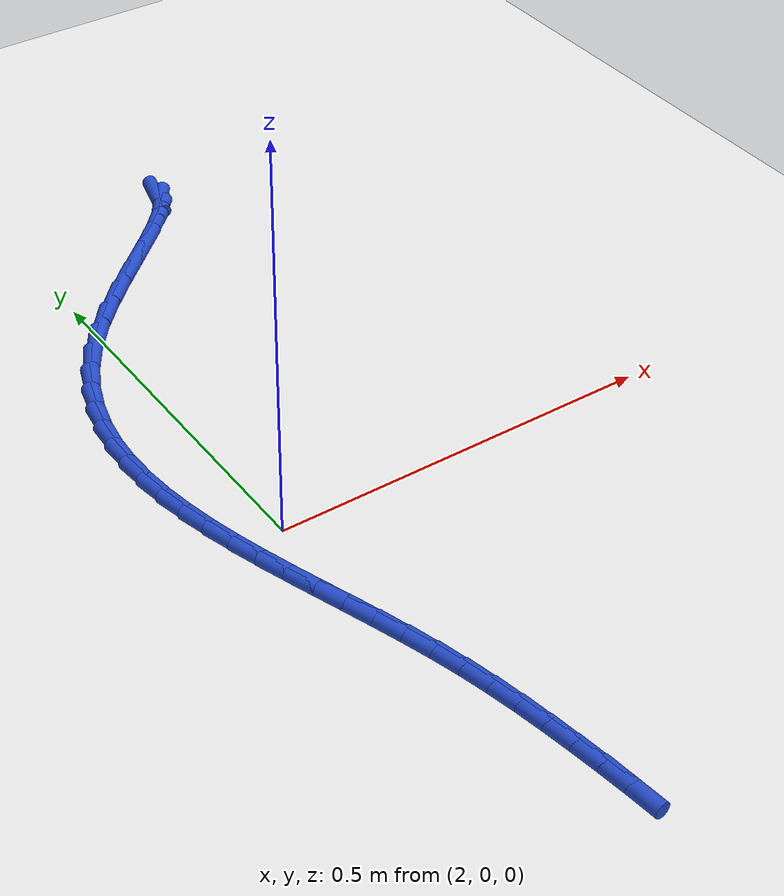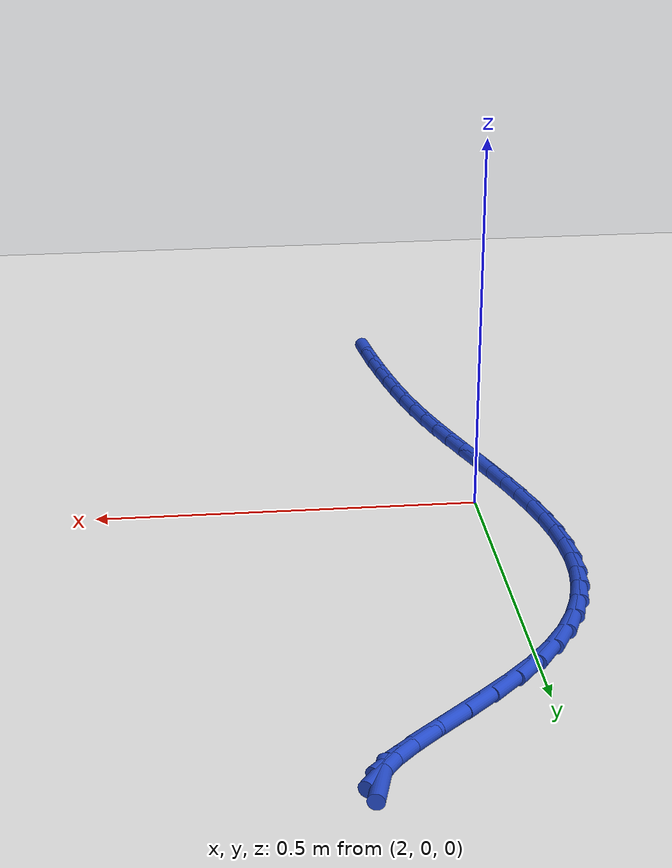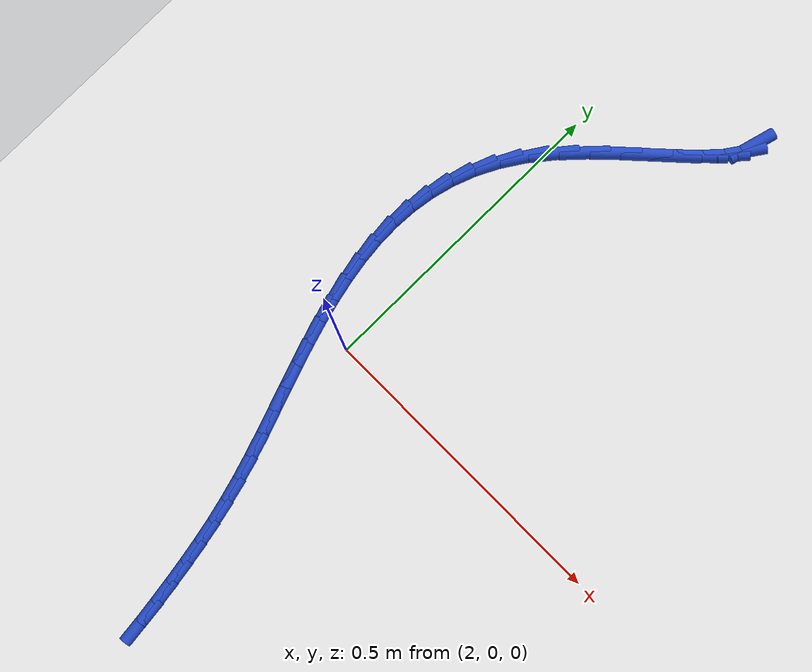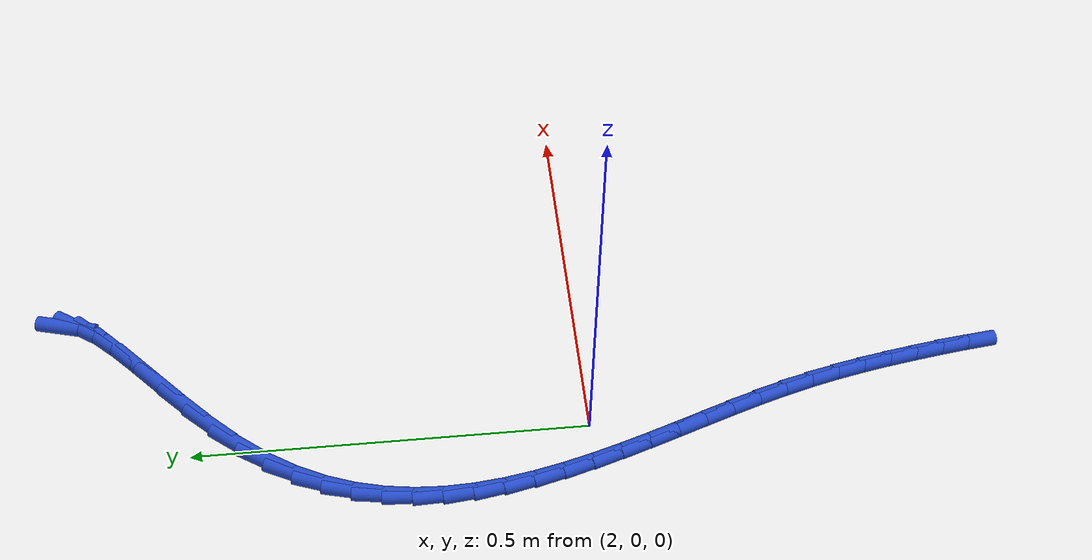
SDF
<sdf version="1.6">
 <world name="default">
  <model name="ground_plane">
   <static>1</static>
   <link name="link">
    <collision name="collision">
     <geometry><plane><normal>0 0 1</normal><size>100 100</size></plane></geometry>
     <surface><friction><ode><mu>100</mu><mu2>50</mu2></ode></friction></surface>
    </collision>
    <visual name="visual">
     <cast_shadows>0</cast_shadows>
     <geometry><plane><normal>0 0 1</normal><size>100 100</size></plane></geometry>
     <material>
      <script><uri>file://media/materials/scripts/gazebo.material</uri><name>Gazebo/WhiteGlow</name></script>
     </material>
    </visual>
   </link>
  </model>
  <model name="line">
   <link name="link_90">
    <pose>2.2158619775593467 0.6663165018667587 0.01 0 1.57 1.310267235170142</pose>
    <collision name="collision">
     <geometry><cylinder><radius>0.01</radius><length>0.08</length></cylinder></geometry>
    </collision>
    <visual name="visual">
     <material>
      <script><name>Gazebo/Blue</name><uri>file://media/materials/scripts/gazebo.material</uri></script>
     </material>
     <geometry><cylinder><radius>0.01</radius><length>0.08</length></cylinder></geometry>
    </visual>
   </link>
   <link name="link_91">
    <pose>2.210893373007312 0.6476787475360073 0.01 0 1.57 0.9751881807619318</pose>
    <collision name="collision">
     <geometry><cylinder><radius>0.01</radius><length>0.08</length></cylinder></geometry>
    </collision>
    <visual name="visual">
     <material>
      <script><name>Gazebo/Blue</name><uri>file://media/materials/scripts/gazebo.material</uri></script>
     </material>
     <geometry><cylinder><radius>0.01</radius><length>0.08</length></cylinder></geometry>
    </visual>
   </link>
   <link name="link_92">
    <pose>2.1958157841121295 0.6254308554736537 0.01 0 1.57 0.8327138609380554</pose>
    <collision name="collision">
     <geometry><cylinder><radius>0.01</radius><length>0.08</length></cylinder></geometry>
    </collision>
    <visual name="visual">
     <material>
      <script><name>Gazebo/Blue</name><uri>file://media/materials/scripts/gazebo.material</uri></script>
     </material>
     <geometry><cylinder><radius>0.01</radius><length>0.08</length></cylinder></geometry>
    </visual>
   </link>
   <link name="link_93">
    <pose>2.1726950972162773 0.600011759426153 0.01 0 1.57 0.7688661426387275</pose>
    <collision name="collision">
     <geometry><cylinder><radius>0.01</radius><length>0.08</length></cylinder></geometry>
    </collision>
    <visual name="visual">
     <material>
      <script><name>Gazebo/Blue</name><uri>file://media/materials/scripts/gazebo.material</uri></script>
     </material>
     <geometry><cylinder><radius>0.01</radius><length>0.08</length></cylinder></geometry>
    </visual>
   </link>
   <link name="link_94">
    <pose>2.1435971986622295 0.5718603931399592 0.01 0 1.57 0.7450046639294534</pose>
    <collision name="collision">
     <geometry><cylinder><radius>0.01</radius><length>0.08</length></cylinder></geometry>
    </collision>
    <visual name="visual">
     <material>
      <script><name>Gazebo/Blue</name><uri>file://media/materials/scripts/gazebo.material</uri></script>
     </material>
     <geometry><cylinder><radius>0.01</radius><length>0.08</length></cylinder></geometry>
    </visual>
   </link>
   <link name="link_95">
    <pose>2.1105879747924625 0.5414156903615263 0.01 0 1.57 0.7473612103931355</pose>
    <collision name="collision">
     <geometry><cylinder><radius>0.01</radius><length>0.08</length></cylinder></geometry>
    </collision>
    <visual name="visual">
     <material>
      <script><name>Gazebo/Blue</name><uri>file://media/materials/scripts/gazebo.material</uri></script>
     </material>
     <geometry><cylinder><radius>0.01</radius><length>0.08</length></cylinder></geometry>
    </visual>
   </link>
   <link name="link_96">
    <pose>2.0757333119494534 0.5091165848373093 0.01 0 1.57 0.7719438585154532</pose>
    <collision name="collision">
     <geometry><cylinder><radius>0.01</radius><length>0.08</length></cylinder></geometry>
    </collision>
    <visual name="visual">
     <material>
      <script><name>Gazebo/Blue</name><uri>file://media/materials/scripts/gazebo.material</uri></script>
     </material>
     <geometry><cylinder><radius>0.01</radius><length>0.08</length></cylinder></geometry>
    </visual>
   </link>
   <link name="link_97">
    <pose>2.041099096475677 0.47540201031376206 0.01 0 1.57 0.8203371503644444</pose>
    <collision name="collision">
     <geometry><cylinder><radius>0.01</radius><length>0.08</length></cylinder></geometry>
    </collision>
    <visual name="visual">
     <material>
      <script><name>Gazebo/Blue</name><uri>file://media/materials/scripts/gazebo.material</uri></script>
     </material>
     <geometry><cylinder><radius>0.01</radius><length>0.08</length></cylinder></geometry>
    </visual>
   </link>
   <link name="link_98">
    <pose>2.0087512147136097 0.4407109005373386 0.01 0 1.57 0.8986769126727358</pose>
    <collision name="collision">
     <geometry><cylinder><radius>0.01</radius><length>0.08</length></cylinder></geometry>
    </collision>
    <visual name="visual">
     <material>
      <script><name>Gazebo/Blue</name><uri>file://media/materials/scripts/gazebo.material</uri></script>
     </material>
     <geometry><cylinder><radius>0.01</radius><length>0.08</length></cylinder></geometry>
    </visual>
   </link>
   <link name="link_99">
    <pose>1.9807137514714204 0.40547510552042204 0.01 0 1.57 0.9999898796737572</pose>
    <collision name="collision">
     <geometry><cylinder><radius>0.01</radius><length>0.08</length></cylinder></geometry>
    </collision>
    <visual name="visual">
     <material>
      <script><name>Gazebo/Blue</name><uri>file://media/materials/scripts/gazebo.material</uri></script>
     </material>
     <geometry><cylinder><radius>0.01</radius><length>0.08</length></cylinder></geometry>
    </visual>
   </link>
   <link name="link_100">
    <pose>1.957894708369813 0.36993734258844235 0.01 0 1.57 1.1071249370963394</pose>
    <collision name="collision">
     <geometry><cylinder><radius>0.01</radius><length>0.08</length></cylinder></geometry>
    </collision>
    <visual name="visual">
     <material>
      <script><name>Gazebo/Blue</name><uri>file://media/materials/scripts/gazebo.material</uri></script>
     </material>
     <geometry><cylinder><radius>0.01</radius><length>0.08</length></cylinder></geometry>
    </visual>
   </link>
   <link name="link_101">
    <pose>1.939992662112055 0.33413537858744724 0.01 0 1.57 1.2161069869531347</pose>
    <collision name="collision">
     <geometry><cylinder><radius>0.01</radius><length>0.08</length></cylinder></geometry>
    </collision>
    <visual name="visual">
     <material>
      <script><name>Gazebo/Blue</name><uri>file://media/materials/scripts/gazebo.material</uri></script>
     </material>
     <geometry><cylinder><radius>0.01</radius><length>0.08</length></cylinder></geometry>
    </visual>
   </link>
   <link name="link_102">
    <pose>1.926645681759358 0.29809672667177906 0.01 0 1.57 1.3234331957291265</pose>
    <collision name="collision">
     <geometry><cylinder><radius>0.01</radius><length>0.08</length></cylinder></geometry>
    </collision>
    <visual name="visual">
     <material>
      <script><name>Gazebo/Blue</name><uri>file://media/materials/scripts/gazebo.material</uri></script>
     </material>
     <geometry><cylinder><radius>0.01</radius><length>0.08</length></cylinder></geometry>
    </visual>
   </link>
   <link name="link_103">
    <pose>1.9174918363729334 0.261848899995779 0.01 0 1.57 1.4257148469462488</pose>
    <collision name="collision">
     <geometry><cylinder><radius>0.01</radius><length>0.08</length></cylinder></geometry>
    </collision>
    <visual name="visual">
     <material>
      <script><name>Gazebo/Blue</name><uri>file://media/materials/scripts/gazebo.material</uri></script>
     </material>
     <geometry><cylinder><radius>0.01</radius><length>0.08</length></cylinder></geometry>
    </visual>
   </link>
   <link name="link_104">
    <pose>1.9121691950139927 0.22541941171378857 0.01 0 1.57 1.520178474512122</pose>
    <collision name="collision">
     <geometry><cylinder><radius>0.01</radius><length>0.08</length></cylinder></geometry>
    </collision>
    <visual name="visual">
     <material>
      <script><name>Gazebo/Blue</name><uri>file://media/materials/scripts/gazebo.material</uri></script>
     </material>
     <geometry><cylinder><radius>0.01</radius><length>0.08</length></cylinder></geometry>
    </visual>
   </link>
   <link name="link_105">
    <pose>1.9103158267437483 0.18883577498014936 0.01 0 1.57 -1.5366509382367965</pose>
    <collision name="collision">
     <geometry><cylinder><radius>0.01</radius><length>0.08</length></cylinder></geometry>
    </collision>
    <visual name="visual">
     <material>
      <script><name>Gazebo/Blue</name><uri>file://media/materials/scripts/gazebo.material</uri></script>
     </material>
     <geometry><cylinder><radius>0.01</radius><length>0.08</length></cylinder></geometry>
    </visual>
   </link>
   <link name="link_106">
    <pose>1.911569800623411 0.15212550294920207 0.01 0 1.57 -1.4625696627480984</pose>
    <collision name="collision">
     <geometry><cylinder><radius>0.01</radius><length>0.08</length></cylinder></geometry>
    </collision>
    <visual name="visual">
     <material>
      <script><name>Gazebo/Blue</name><uri>file://media/materials/scripts/gazebo.material</uri></script>
     </material>
     <geometry><cylinder><radius>0.01</radius><length>0.08</length></cylinder></geometry>
    </visual>
   </link>
   <link name="link_107">
    <pose>1.9155691857141925 0.11531610877528996 0.01 0 1.57 -1.3994273406409738</pose>
    <collision name="collision">
     <geometry><cylinder><radius>0.01</radius><length>0.08</length></cylinder></geometry>
    </collision>
    <visual name="visual">
     <material>
      <script><name>Gazebo/Blue</name><uri>file://media/materials/scripts/gazebo.material</uri></script>
     </material>
     <geometry><cylinder><radius>0.01</radius><length>0.08</length></cylinder></geometry>
    </visual>
   </link>
   <link name="link_108">
    <pose>1.921952051077305 0.07843510561275371 0.01 0 1.57 -1.3470017990164733</pose>
    <collision name="collision">
     <geometry><cylinder><radius>0.01</radius><length>0.08</length></cylinder></geometry>
    </collision>
    <visual name="visual">
     <material>
      <script><name>Gazebo/Blue</name><uri>file://media/materials/scripts/gazebo.material</uri></script>
     </material>
     <geometry><cylinder><radius>0.01</radius><length>0.08</length></cylinder></geometry>
    </visual>
   </link>
   <link name="link_109">
    <pose>1.93035646577396 0.04151000661593495 0.01 0 1.57 -1.304820719876198</pose>
    <collision name="collision">
     <geometry><cylinder><radius>0.01</radius><length>0.08</length></cylinder></geometry>
    </collision>
    <visual name="visual">
     <material>
      <script><name>Gazebo/Blue</name><uri>file://media/materials/scripts/gazebo.material</uri></script>
     </material>
     <geometry><cylinder><radius>0.01</radius><length>0.08</length></cylinder></geometry>
    </visual>
   </link>
   <link name="link_110">
    <pose>1.9404204988653684 0.004568324939175188 0.01 0 1.57 -1.27233666421298</pose>
    <collision name="collision">
     <geometry><cylinder><radius>0.01</radius><length>0.08</length></cylinder></geometry>
    </collision>
    <visual name="visual">
     <material>
      <script><name>Gazebo/Blue</name><uri>file://media/materials/scripts/gazebo.material</uri></script>
     </material>
     <geometry><cylinder><radius>0.01</radius><length>0.08</length></cylinder></geometry>
    </visual>
   </link>
   <link name="link_111">
    <pose>1.9517822194127432 -0.032362426263184044 0.01 0 1.57 -1.249044767148079</pose>
    <collision name="collision">
     <geometry><cylinder><radius>0.01</radius><length>0.08</length></cylinder></geometry>
    </collision>
    <visual name="visual">
     <material>
      <script><name>Gazebo/Blue</name><uri>file://media/materials/scripts/gazebo.material</uri></script>
     </material>
     <geometry><cylinder><radius>0.01</radius><length>0.08</length></cylinder></geometry>
    </visual>
   </link>
   <link name="link_112">
    <pose>1.9640796964772949 -0.06925473383680202 0.01 0 1.57 -1.2345550802624417</pose>
    <collision name="collision">
     <geometry><cylinder><radius>0.01</radius><length>0.08</length></cylinder></geometry>
    </collision>
    <visual name="visual">
     <material>
      <script><name>Gazebo/Blue</name><uri>file://media/materials/scripts/gazebo.material</uri></script>
     </material>
     <geometry><cylinder><radius>0.01</radius><length>0.08</length></cylinder></geometry>
    </visual>
   </link>
   <link name="link_113">
    <pose>1.9769509991202352 -0.10608108462733548 0.01 0 1.57 -1.2286343194399634</pose>
    <collision name="collision">
     <geometry><cylinder><radius>0.01</radius><length>0.08</length></cylinder></geometry>
    </collision>
    <visual name="visual">
     <material>
      <script><name>Gazebo/Blue</name><uri>file://media/materials/scripts/gazebo.material</uri></script>
     </material>
     <geometry><cylinder><radius>0.01</radius><length>0.08</length></cylinder></geometry>
    </visual>
   </link>
   <link name="link_114">
    <pose>1.9900341964027761 -0.14281396548044367 0.01 0 1.57 -1.2312289269026955</pose>
    <collision name="collision">
     <geometry><cylinder><radius>0.01</radius><length>0.08</length></cylinder></geometry>
    </collision>
    <visual name="visual">
     <material>
      <script><name>Gazebo/Blue</name><uri>file://media/materials/scripts/gazebo.material</uri></script>
     </material>
     <geometry><cylinder><radius>0.01</radius><length>0.08</length></cylinder></geometry>
    </visual>
   </link>
   <link name="link_115">
    <pose>2.0029673573861286 -0.17942586324178508 0.01 0 1.57 -1.2424768615846413</pose>
    <collision name="collision">
     <geometry><cylinder><radius>0.01</radius><length>0.08</length></cylinder></geometry>
    </collision>
    <visual name="visual">
     <material>
      <script><name>Gazebo/Blue</name><uri>file://media/materials/scripts/gazebo.material</uri></script>
     </material>
     <geometry><cylinder><radius>0.01</radius><length>0.08</length></cylinder></geometry>
    </visual>
   </link>
   <link name="link_116">
    <pose>2.0153885511315055 -0.21588926475701817 0.01 0 1.57 -1.2627108351016112</pose>
    <collision name="collision">
     <geometry><cylinder><radius>0.01</radius><length>0.08</length></cylinder></geometry>
    </collision>
    <visual name="visual">
     <material>
      <script><name>Gazebo/Blue</name><uri>file://media/materials/scripts/gazebo.material</uri></script>
     </material>
     <geometry><cylinder><radius>0.01</radius><length>0.08</length></cylinder></geometry>
    </visual>
   </link>
   <link name="link_117">
    <pose>2.026935846700118 -0.25217665687180135 0.01 0 1.57 -1.2922909150513144</pose>
    <collision name="collision">
     <geometry><cylinder><radius>0.01</radius><length>0.08</length></cylinder></geometry>
    </collision>
    <visual name="visual">
     <material>
      <script><name>Gazebo/Blue</name><uri>file://media/materials/scripts/gazebo.material</uri></script>
     </material>
     <geometry><cylinder><radius>0.01</radius><length>0.08</length></cylinder></geometry>
    </visual>
   </link>
   <link name="link_118">
    <pose>2.037253874235591 -0.28826164423575124 0.01 0 1.57 -1.325879338792892</pose>
    <collision name="collision">
     <geometry><cylinder><radius>0.01</radius><length>0.08</length></cylinder></geometry>
    </collision>
    <visual name="visual">
     <material>
      <script><name>Gazebo/Blue</name><uri>file://media/materials/scripts/gazebo.material</uri></script>
     </material>
     <geometry><cylinder><radius>0.01</radius><length>0.08</length></cylinder></geometry>
    </visual>
   </link>
   <link name="link_119">
    <pose>2.04622572537753 -0.3241584579054191 0.01 0 1.57 -1.355873928276081</pose>
    <collision name="collision">
     <geometry><cylinder><radius>0.01</radius><length>0.08</length></cylinder></geometry>
    </collision>
    <visual name="visual">
     <material>
      <script><name>Gazebo/Blue</name><uri>file://media/materials/scripts/gazebo.material</uri></script>
     </material>
     <geometry><cylinder><radius>0.01</radius><length>0.08</length></cylinder></geometry>
    </visual>
   </link>
   <link name="link_120">
    <pose>2.054034986188134 -0.35993252382164126 0.01 0 1.57 -1.3813426469571306</pose>
    <collision name="collision">
     <geometry><cylinder><radius>0.01</radius><length>0.08</length></cylinder></geometry>
    </collision>
    <visual name="visual">
     <material>
      <script><name>Gazebo/Blue</name><uri>file://media/materials/scripts/gazebo.material</uri></script>
     </material>
     <geometry><cylinder><radius>0.01</radius><length>0.08</length></cylinder></geometry>
    </visual>
   </link>
   <link name="link_121">
    <pose>2.060884418696744 -0.3956525349124119 0.01 0 1.57 -1.401930898917359</pose>
    <collision name="collision">
     <geometry><cylinder><radius>0.01</radius><length>0.08</length></cylinder></geometry>
    </collision>
    <visual name="visual">
     <material>
      <script><name>Gazebo/Blue</name><uri>file://media/materials/scripts/gazebo.material</uri></script>
     </material>
     <geometry><cylinder><radius>0.01</radius><length>0.08</length></cylinder></geometry>
    </visual>
   </link>
   <link name="link_122">
    <pose>2.066976784932701 -0.4313871841057245 0.01 0 1.57 -1.4174379878297119</pose>
    <collision name="collision">
     <geometry><cylinder><radius>0.01</radius><length>0.08</length></cylinder></geometry>
    </collision>
    <visual name="visual">
     <material>
      <script><name>Gazebo/Blue</name><uri>file://media/materials/scripts/gazebo.material</uri></script>
     </material>
     <geometry><cylinder><radius>0.01</radius><length>0.08</length></cylinder></geometry>
    </visual>
   </link>
   <link name="link_123">
    <pose>2.072513202580341 -0.46720490498094563 0.01 0 1.57 -1.4320398057691295</pose>
    <collision name="collision">
     <geometry><cylinder><radius>0.01</radius><length>0.08</length></cylinder></geometry>
    </collision>
    <visual name="visual">
     <material>
      <script><name>Gazebo/Blue</name><uri>file://media/materials/scripts/gazebo.material</uri></script>
     </material>
     <geometry><cylinder><radius>0.01</radius><length>0.08</length></cylinder></geometry>
    </visual>
   </link>
   <link name="link_124">
    <pose>2.077532880576453 -0.5031485946203982 0.01 0 1.57 -1.4536097499518603</pose>
    <collision name="collision">
     <geometry><cylinder><radius>0.01</radius><length>0.08</length></cylinder></geometry>
    </collision>
    <visual name="visual">
     <material>
      <script><name>Gazebo/Blue</name><uri>file://media/materials/scripts/gazebo.material</uri></script>
     </material>
     <geometry><cylinder><radius>0.01</radius><length>0.08</length></cylinder></geometry>
    </visual>
   </link>
  </model>
 </world>
</sdf>
